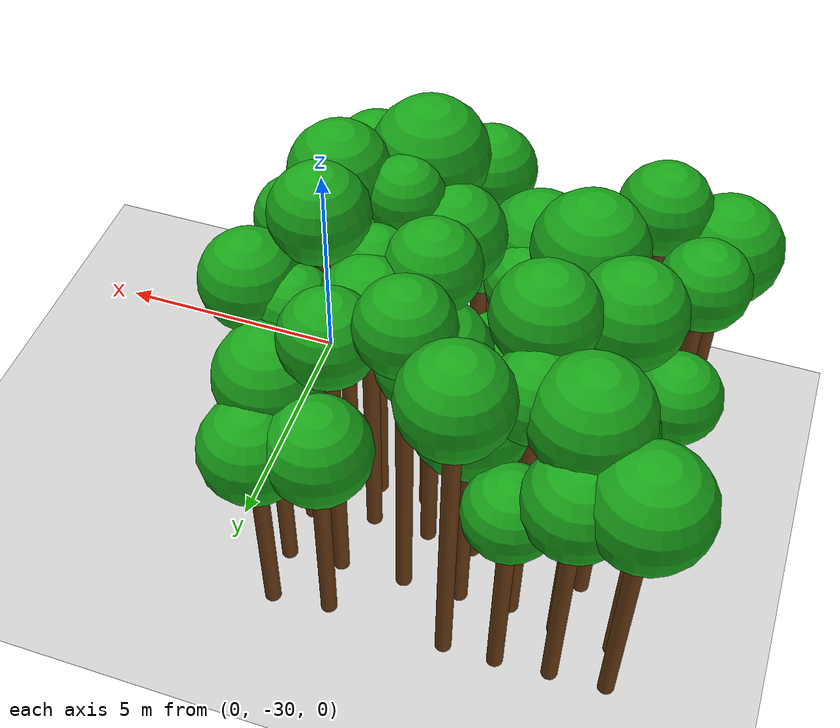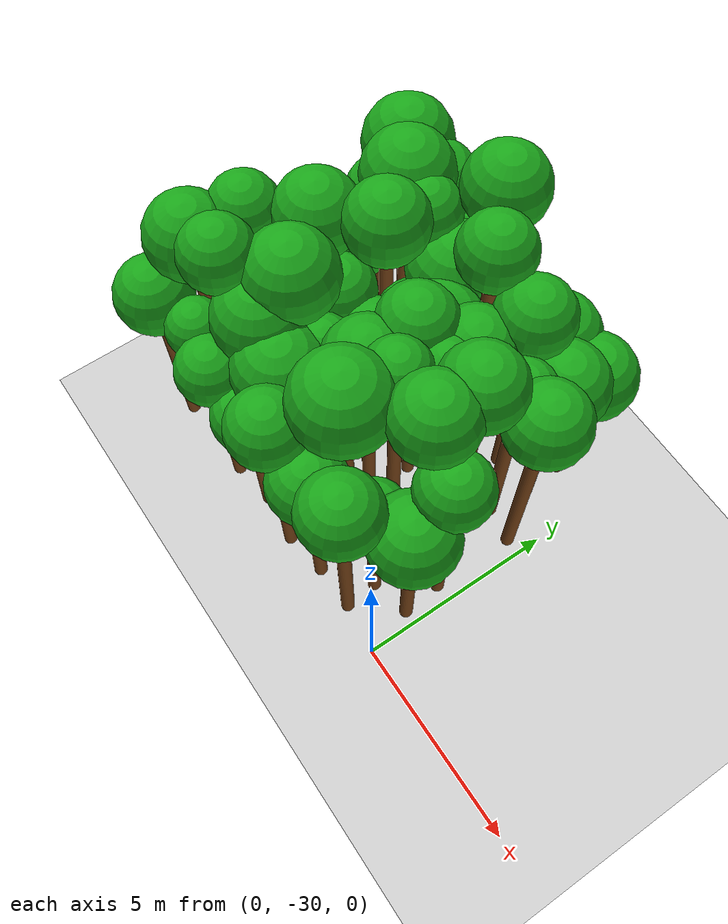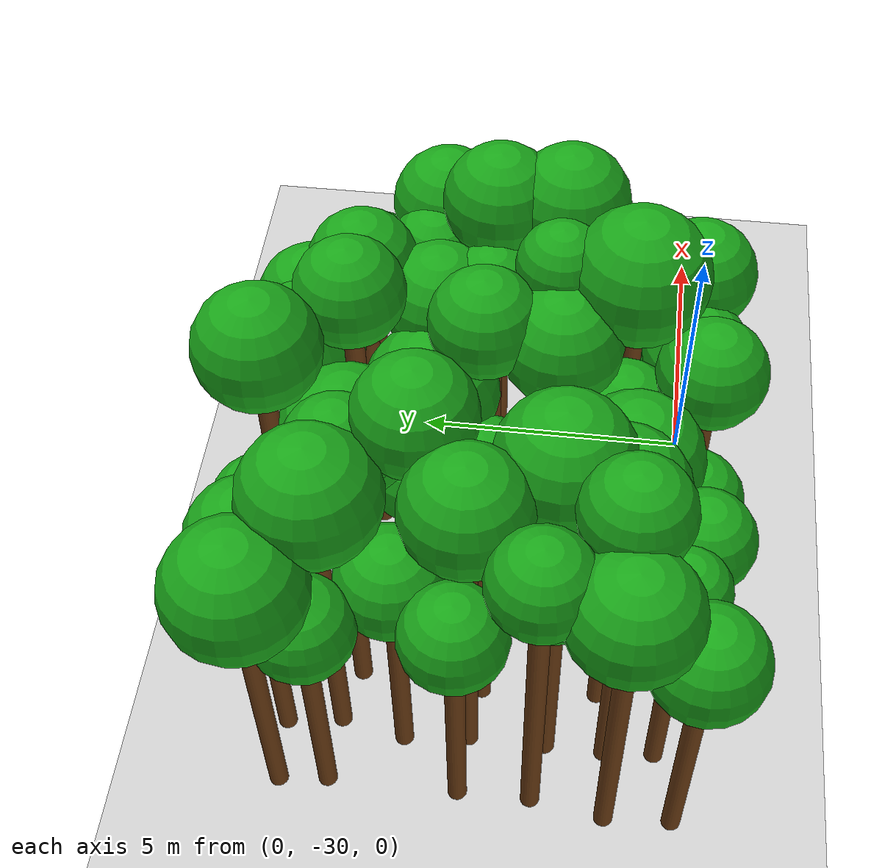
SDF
<sdf version="1.6">
 <world name="forest_world">
  <include><uri>model://sun</uri></include>
  <include><uri>model://ground_plane</uri></include>
  <model name="tree_1100_trunk">
   <static>true</static>
   <pose>-8.08 -30.18 2.35 0 0 0</pose>
   <link name="link">
    <collision name="collision">
     <geometry><cylinder><radius>0.16</radius><length>4.71</length></cylinder></geometry>
    </collision>
    <visual name="visual">
     <geometry><cylinder><radius>0.16</radius><length>4.71</length></cylinder></geometry>
     <material><ambient>0.35 0.20 0.05 1</ambient><diffuse>0.45 0.25 0.08 1</diffuse></material>
    </visual>
   </link>
  </model>
  <model name="tree_1100_leaf">
   <static>true</static>
   <pose>-8.08 -30.18 5.25 0 0 0</pose>
   <link name="link">
    <collision name="collision"><geometry><sphere><radius>0.91</radius></sphere></geometry></collision>
    <visual name="visual">
     <geometry><sphere><radius>0.91</radius></sphere></geometry>
     <material><ambient>0.05 0.45 0.05 1</ambient><diffuse>0.10 0.65 0.10 1</diffuse></material>
    </visual>
   </link>
  </model>
  <model name="tree_1101_trunk">
   <static>true</static>
   <pose>-8.14 -29.05 2.91 0 0 0</pose>
   <link name="link">
    <collision name="collision">
     <geometry><cylinder><radius>0.16</radius><length>5.81</length></cylinder></geometry>
    </collision>
    <visual name="visual">
     <geometry><cylinder><radius>0.16</radius><length>5.81</length></cylinder></geometry>
     <material><ambient>0.35 0.20 0.05 1</ambient><diffuse>0.45 0.25 0.08 1</diffuse></material>
    </visual>
   </link>
  </model>
  <model name="tree_1101_leaf">
   <static>true</static>
   <pose>-8.14 -29.05 6.41 0 0 0</pose>
   <link name="link">
    <collision name="collision"><geometry><sphere><radius>1.01</radius></sphere></geometry></collision>
    <visual name="visual">
     <geometry><sphere><radius>1.01</radius></sphere></geometry>
     <material><ambient>0.05 0.45 0.05 1</ambient><diffuse>0.10 0.65 0.10 1</diffuse></material>
    </visual>
   </link>
  </model>
  <model name="tree_1102_trunk">
   <static>true</static>
   <pose>-7.93 -27.80 3.08 0 0 0</pose>
   <link name="link">
    <collision name="collision">
     <geometry><cylinder><radius>0.16</radius><length>6.16</length></cylinder></geometry>
    </collision>
    <visual name="visual">
     <geometry><cylinder><radius>0.16</radius><length>6.16</length></cylinder></geometry>
     <material><ambient>0.35 0.20 0.05 1</ambient><diffuse>0.45 0.25 0.08 1</diffuse></material>
    </visual>
   </link>
  </model>
  <model name="tree_1102_leaf">
   <static>true</static>
   <pose>-7.93 -27.80 6.65 0 0 0</pose>
   <link name="link">
    <collision name="collision"><geometry><sphere><radius>0.82</radius></sphere></geometry></collision>
    <visual name="visual">
     <geometry><sphere><radius>0.82</radius></sphere></geometry>
     <material><ambient>0.05 0.45 0.05 1</ambient><diffuse>0.10 0.65 0.10 1</diffuse></material>
    </visual>
   </link>
  </model>
  <model name="tree_1103_trunk">
   <static>true</static>
   <pose>-7.93 -26.57 2.27 0 0 0</pose>
   <link name="link">
    <collision name="collision">
     <geometry><cylinder><radius>0.16</radius><length>4.54</length></cylinder></geometry>
    </collision>
    <visual name="visual">
     <geometry><cylinder><radius>0.16</radius><length>4.54</length></cylinder></geometry>
     <material><ambient>0.35 0.20 0.05 1</ambient><diffuse>0.45 0.25 0.08 1</diffuse></material>
    </visual>
   </link>
  </model>
  <model name="tree_1103_leaf">
   <static>true</static>
   <pose>-7.93 -26.57 5.04 0 0 0</pose>
   <link name="link">
    <collision name="collision"><geometry><sphere><radius>0.84</radius></sphere></geometry></collision>
    <visual name="visual">
     <geometry><sphere><radius>0.84</radius></sphere></geometry>
     <material><ambient>0.05 0.45 0.05 1</ambient><diffuse>0.10 0.65 0.10 1</diffuse></material>
    </visual>
   </link>
  </model>
  <model name="tree_1105_trunk">
   <static>true</static>
   <pose>-7.92 -24.35 2.19 0 0 0</pose>
   <link name="link">
    <collision name="collision">
     <geometry><cylinder><radius>0.16</radius><length>4.38</length></cylinder></geometry>
    </collision>
    <visual name="visual">
     <geometry><cylinder><radius>0.16</radius><length>4.38</length></cylinder></geometry>
     <material><ambient>0.35 0.20 0.05 1</ambient><diffuse>0.45 0.25 0.08 1</diffuse></material>
    </visual>
   </link>
  </model>
  <model name="tree_1105_leaf">
   <static>true</static>
   <pose>-7.92 -24.35 4.88 0 0 0</pose>
   <link name="link">
    <collision name="collision"><geometry><sphere><radius>0.83</radius></sphere></geometry></collision>
    <visual name="visual">
     <geometry><sphere><radius>0.83</radius></sphere></geometry>
     <material><ambient>0.05 0.45 0.05 1</ambient><diffuse>0.10 0.65 0.10 1</diffuse></material>
    </visual>
   </link>
  </model>
  <model name="tree_1106_trunk">
   <static>true</static>
   <pose>-8.01 -23.52 2.62 0 0 0</pose>
   <link name="link">
    <collision name="collision">
     <geometry><cylinder><radius>0.16</radius><length>5.23</length></cylinder></geometry>
    </collision>
    <visual name="visual">
     <geometry><cylinder><radius>0.16</radius><length>5.23</length></cylinder></geometry>
     <material><ambient>0.35 0.20 0.05 1</ambient><diffuse>0.45 0.25 0.08 1</diffuse></material>
    </visual>
   </link>
  </model>
  <model name="tree_1106_leaf">
   <static>true</static>
   <pose>-8.01 -23.52 5.89 0 0 0</pose>
   <link name="link">
    <collision name="collision"><geometry><sphere><radius>1.09</radius></sphere></geometry></collision>
    <visual name="visual">
     <geometry><sphere><radius>1.09</radius></sphere></geometry>
     <material><ambient>0.05 0.45 0.05 1</ambient><diffuse>0.10 0.65 0.10 1</diffuse></material>
    </visual>
   </link>
  </model>
  <model name="tree_1155_trunk">
   <static>true</static>
   <pose>-6.88 -29.84 2.38 0 0 0</pose>
   <link name="link">
    <collision name="collision">
     <geometry><cylinder><radius>0.16</radius><length>4.76</length></cylinder></geometry>
    </collision>
    <visual name="visual">
     <geometry><cylinder><radius>0.16</radius><length>4.76</length></cylinder></geometry>
     <material><ambient>0.35 0.20 0.05 1</ambient><diffuse>0.45 0.25 0.08 1</diffuse></material>
    </visual>
   </link>
  </model>
  <model name="tree_1155_leaf">
   <static>true</static>
   <pose>-6.88 -29.84 5.18 0 0 0</pose>
   <link name="link">
    <collision name="collision"><geometry><sphere><radius>0.70</radius></sphere></geometry></collision>
    <visual name="visual">
     <geometry><sphere><radius>0.70</radius></sphere></geometry>
     <material><ambient>0.05 0.45 0.05 1</ambient><diffuse>0.10 0.65 0.10 1</diffuse></material>
    </visual>
   </link>
  </model>
  <model name="tree_1156_trunk">
   <static>true</static>
   <pose>-6.94 -28.98 3.29 0 0 0</pose>
   <link name="link">
    <collision name="collision">
     <geometry><cylinder><radius>0.16</radius><length>6.58</length></cylinder></geometry>
    </collision>
    <visual name="visual">
     <geometry><cylinder><radius>0.16</radius><length>6.58</length></cylinder></geometry>
     <material><ambient>0.35 0.20 0.05 1</ambient><diffuse>0.45 0.25 0.08 1</diffuse></material>
    </visual>
   </link>
  </model>
  <model name="tree_1156_leaf">
   <static>true</static>
   <pose>-6.94 -28.98 7.09 0 0 0</pose>
   <link name="link">
    <collision name="collision"><geometry><sphere><radius>0.85</radius></sphere></geometry></collision>
    <visual name="visual">
     <geometry><sphere><radius>0.85</radius></sphere></geometry>
     <material><ambient>0.05 0.45 0.05 1</ambient><diffuse>0.10 0.65 0.10 1</diffuse></material>
    </visual>
   </link>
  </model>
  <model name="tree_1157_trunk">
   <static>true</static>
   <pose>-6.91 -27.97 2.22 0 0 0</pose>
   <link name="link">
    <collision name="collision">
     <geometry><cylinder><radius>0.16</radius><length>4.44</length></cylinder></geometry>
    </collision>
    <visual name="visual">
     <geometry><cylinder><radius>0.16</radius><length>4.44</length></cylinder></geometry>
     <material><ambient>0.35 0.20 0.05 1</ambient><diffuse>0.45 0.25 0.08 1</diffuse></material>
    </visual>
   </link>
  </model>
  <model name="tree_1157_leaf">
   <static>true</static>
   <pose>-6.91 -27.97 4.91 0 0 0</pose>
   <link name="link">
    <collision name="collision"><geometry><sphere><radius>0.79</radius></sphere></geometry></collision>
    <visual name="visual">
     <geometry><sphere><radius>0.79</radius></sphere></geometry>
     <material><ambient>0.05 0.45 0.05 1</ambient><diffuse>0.10 0.65 0.10 1</diffuse></material>
    </visual>
   </link>
  </model>
  <model name="tree_1158_trunk">
   <static>true</static>
   <pose>-6.90 -26.65 3.07 0 0 0</pose>
   <link name="link">
    <collision name="collision">
     <geometry><cylinder><radius>0.16</radius><length>6.14</length></cylinder></geometry>
    </collision>
    <visual name="visual">
     <geometry><cylinder><radius>0.16</radius><length>6.14</length></cylinder></geometry>
     <material><ambient>0.35 0.20 0.05 1</ambient><diffuse>0.45 0.25 0.08 1</diffuse></material>
    </visual>
   </link>
  </model>
  <model name="tree_1158_leaf">
   <static>true</static>
   <pose>-6.90 -26.65 6.73 0 0 0</pose>
   <link name="link">
    <collision name="collision"><geometry><sphere><radius>0.99</radius></sphere></geometry></collision>
    <visual name="visual">
     <geometry><sphere><radius>0.99</radius></sphere></geometry>
     <material><ambient>0.05 0.45 0.05 1</ambient><diffuse>0.10 0.65 0.10 1</diffuse></material>
    </visual>
   </link>
  </model>
  <model name="tree_1159_trunk">
   <static>true</static>
   <pose>-7.02 -25.54 2.20 0 0 0</pose>
   <link name="link">
    <collision name="collision">
     <geometry><cylinder><radius>0.16</radius><length>4.39</length></cylinder></geometry>
    </collision>
    <visual name="visual">
     <geometry><cylinder><radius>0.16</radius><length>4.39</length></cylinder></geometry>
     <material><ambient>0.35 0.20 0.05 1</ambient><diffuse>0.45 0.25 0.08 1</diffuse></material>
    </visual>
   </link>
  </model>
  <model name="tree_1159_leaf">
   <static>true</static>
   <pose>-7.02 -25.54 4.93 0 0 0</pose>
   <link name="link">
    <collision name="collision"><geometry><sphere><radius>0.89</radius></sphere></geometry></collision>
    <visual name="visual">
     <geometry><sphere><radius>0.89</radius></sphere></geometry>
     <material><ambient>0.05 0.45 0.05 1</ambient><diffuse>0.10 0.65 0.10 1</diffuse></material>
    </visual>
   </link>
  </model>
  <model name="tree_1160_trunk">
   <static>true</static>
   <pose>-6.78 -24.42 2.96 0 0 0</pose>
   <link name="link">
    <collision name="collision">
     <geometry><cylinder><radius>0.16</radius><length>5.92</length></cylinder></geometry>
    </collision>
    <visual name="visual">
     <geometry><cylinder><radius>0.16</radius><length>5.92</length></cylinder></geometry>
     <material><ambient>0.35 0.20 0.05 1</ambient><diffuse>0.45 0.25 0.08 1</diffuse></material>
    </visual>
   </link>
  </model>
  <model name="tree_1160_leaf">
   <static>true</static>
   <pose>-6.78 -24.42 6.57 0 0 0</pose>
   <link name="link">
    <collision name="collision"><geometry><sphere><radius>1.08</radius></sphere></geometry></collision>
    <visual name="visual">
     <geometry><sphere><radius>1.08</radius></sphere></geometry>
     <material><ambient>0.05 0.45 0.05 1</ambient><diffuse>0.10 0.65 0.10 1</diffuse></material>
    </visual>
   </link>
  </model>
  <model name="tree_1161_trunk">
   <static>true</static>
   <pose>-6.92 -23.47 2.48 0 0 0</pose>
   <link name="link">
    <collision name="collision">
     <geometry><cylinder><radius>0.16</radius><length>4.96</length></cylinder></geometry>
    </collision>
    <visual name="visual">
     <geometry><cylinder><radius>0.16</radius><length>4.96</length></cylinder></geometry>
     <material><ambient>0.35 0.20 0.05 1</ambient><diffuse>0.45 0.25 0.08 1</diffuse></material>
    </visual>
   </link>
  </model>
  <model name="tree_1161_leaf">
   <static>true</static>
   <pose>-6.92 -23.47 5.55 0 0 0</pose>
   <link name="link">
    <collision name="collision"><geometry><sphere><radius>0.98</radius></sphere></geometry></collision>
    <visual name="visual">
     <geometry><sphere><radius>0.98</radius></sphere></geometry>
     <material><ambient>0.05 0.45 0.05 1</ambient><diffuse>0.10 0.65 0.10 1</diffuse></material>
    </visual>
   </link>
  </model>
  <model name="tree_1210_trunk">
   <static>true</static>
   <pose>-5.87 -30.09 2.29 0 0 0</pose>
   <link name="link">
    <collision name="collision">
     <geometry><cylinder><radius>0.16</radius><length>4.58</length></cylinder></geometry>
    </collision>
    <visual name="visual">
     <geometry><cylinder><radius>0.16</radius><length>4.58</length></cylinder></geometry>
     <material><ambient>0.35 0.20 0.05 1</ambient><diffuse>0.45 0.25 0.08 1</diffuse></material>
    </visual>
   </link>
  </model>
  <model name="tree_1210_leaf">
   <static>true</static>
   <pose>-5.87 -30.09 5.07 0 0 0</pose>
   <link name="link">
    <collision name="collision"><geometry><sphere><radius>0.81</radius></sphere></geometry></collision>
    <visual name="visual">
     <geometry><sphere><radius>0.81</radius></sphere></geometry>
     <material><ambient>0.05 0.45 0.05 1</ambient><diffuse>0.10 0.65 0.10 1</diffuse></material>
    </visual>
   </link>
  </model>
  <model name="tree_1211_trunk">
   <static>true</static>
   <pose>-5.83 -28.79 2.69 0 0 0</pose>
   <link name="link">
    <collision name="collision">
     <geometry><cylinder><radius>0.16</radius><length>5.38</length></cylinder></geometry>
    </collision>
    <visual name="visual">
     <geometry><cylinder><radius>0.16</radius><length>5.38</length></cylinder></geometry>
     <material><ambient>0.35 0.20 0.05 1</ambient><diffuse>0.45 0.25 0.08 1</diffuse></material>
    </visual>
   </link>
  </model>
  <model name="tree_1211_leaf">
   <static>true</static>
   <pose>-5.83 -28.79 6.01 0 0 0</pose>
   <link name="link">
    <collision name="collision"><geometry><sphere><radius>1.06</radius></sphere></geometry></collision>
    <visual name="visual">
     <geometry><sphere><radius>1.06</radius></sphere></geometry>
     <material><ambient>0.05 0.45 0.05 1</ambient><diffuse>0.10 0.65 0.10 1</diffuse></material>
    </visual>
   </link>
  </model>
  <model name="tree_1212_trunk">
   <static>true</static>
   <pose>-5.90 -27.94 3.05 0 0 0</pose>
   <link name="link">
    <collision name="collision">
     <geometry><cylinder><radius>0.16</radius><length>6.11</length></cylinder></geometry>
    </collision>
    <visual name="visual">
     <geometry><cylinder><radius>0.16</radius><length>6.11</length></cylinder></geometry>
     <material><ambient>0.35 0.20 0.05 1</ambient><diffuse>0.45 0.25 0.08 1</diffuse></material>
    </visual>
   </link>
  </model>
  <model name="tree_1212_leaf">
   <static>true</static>
   <pose>-5.90 -27.94 6.75 0 0 0</pose>
   <link name="link">
    <collision name="collision"><geometry><sphere><radius>1.07</radius></sphere></geometry></collision>
    <visual name="visual">
     <geometry><sphere><radius>1.07</radius></sphere></geometry>
     <material><ambient>0.05 0.45 0.05 1</ambient><diffuse>0.10 0.65 0.10 1</diffuse></material>
    </visual>
   </link>
  </model>
  <model name="tree_1213_trunk">
   <static>true</static>
   <pose>-5.95 -26.77 2.33 0 0 0</pose>
   <link name="link">
    <collision name="collision">
     <geometry><cylinder><radius>0.16</radius><length>4.66</length></cylinder></geometry>
    </collision>
    <visual name="visual">
     <geometry><cylinder><radius>0.16</radius><length>4.66</length></cylinder></geometry>
     <material><ambient>0.35 0.20 0.05 1</ambient><diffuse>0.45 0.25 0.08 1</diffuse></material>
    </visual>
   </link>
  </model>
  <model name="tree_1213_leaf">
   <static>true</static>
   <pose>-5.95 -26.77 5.17 0 0 0</pose>
   <link name="link">
    <collision name="collision"><geometry><sphere><radius>0.85</radius></sphere></geometry></collision>
    <visual name="visual">
     <geometry><sphere><radius>0.85</radius></sphere></geometry>
     <material><ambient>0.05 0.45 0.05 1</ambient><diffuse>0.10 0.65 0.10 1</diffuse></material>
    </visual>
   </link>
  </model>
  <model name="tree_1214_trunk">
   <static>true</static>
   <pose>-5.63 -25.77 3.29 0 0 0</pose>
   <link name="link">
    <collision name="collision">
     <geometry><cylinder><radius>0.16</radius><length>6.59</length></cylinder></geometry>
    </collision>
    <visual name="visual">
     <geometry><cylinder><radius>0.16</radius><length>6.59</length></cylinder></geometry>
     <material><ambient>0.35 0.20 0.05 1</ambient><diffuse>0.45 0.25 0.08 1</diffuse></material>
    </visual>
   </link>
  </model>
  <model name="tree_1214_leaf">
   <static>true</static>
   <pose>-5.63 -25.77 7.15 0 0 0</pose>
   <link name="link">
    <collision name="collision"><geometry><sphere><radius>0.95</radius></sphere></geometry></collision>
    <visual name="visual">
     <geometry><sphere><radius>0.95</radius></sphere></geometry>
     <material><ambient>0.05 0.45 0.05 1</ambient><diffuse>0.10 0.65 0.10 1</diffuse></material>
    </visual>
   </link>
  </model>
  <model name="tree_1215_trunk">
   <static>true</static>
   <pose>-5.82 -24.63 3.00 0 0 0</pose>
   <link name="link">
    <collision name="collision">
     <geometry><cylinder><radius>0.16</radius><length>5.99</length></cylinder></geometry>
    </collision>
    <visual name="visual">
     <geometry><cylinder><radius>0.16</radius><length>5.99</length></cylinder></geometry>
     <material><ambient>0.35 0.20 0.05 1</ambient><diffuse>0.45 0.25 0.08 1</diffuse></material>
    </visual>
   </link>
  </model>
  <model name="tree_1215_leaf">
   <static>true</static>
   <pose>-5.82 -24.63 6.49 0 0 0</pose>
   <link name="link">
    <collision name="collision"><geometry><sphere><radius>0.83</radius></sphere></geometry></collision>
    <visual name="visual">
     <geometry><sphere><radius>0.83</radius></sphere></geometry>
     <material><ambient>0.05 0.45 0.05 1</ambient><diffuse>0.10 0.65 0.10 1</diffuse></material>
    </visual>
   </link>
  </model>
  <model name="tree_1216_trunk">
   <static>true</static>
   <pose>-5.86 -23.40 2.19 0 0 0</pose>
   <link name="link">
    <collision name="collision">
     <geometry><cylinder><radius>0.16</radius><length>4.39</length></cylinder></geometry>
    </collision>
    <visual name="visual">
     <geometry><cylinder><radius>0.16</radius><length>4.39</length></cylinder></geometry>
     <material><ambient>0.35 0.20 0.05 1</ambient><diffuse>0.45 0.25 0.08 1</diffuse></material>
    </visual>
   </link>
  </model>
  <model name="tree_1216_leaf">
   <static>true</static>
   <pose>-5.86 -23.40 4.90 0 0 0</pose>
   <link name="link">
    <collision name="collision"><geometry><sphere><radius>0.85</radius></sphere></geometry></collision>
    <visual name="visual">
     <geometry><sphere><radius>0.85</radius></sphere></geometry>
     <material><ambient>0.05 0.45 0.05 1</ambient><diffuse>0.10 0.65 0.10 1</diffuse></material>
    </visual>
   </link>
  </model>
  <model name="tree_1265_trunk">
   <static>true</static>
   <pose>-4.75 -29.92 2.02 0 0 0</pose>
   <link name="link">
    <collision name="collision">
     <geometry><cylinder><radius>0.16</radius><length>4.04</length></cylinder></geometry>
    </collision>
    <visual name="visual">
     <geometry><cylinder><radius>0.16</radius><length>4.04</length></cylinder></geometry>
     <material><ambient>0.35 0.20 0.05 1</ambient><diffuse>0.45 0.25 0.08 1</diffuse></material>
    </visual>
   </link>
  </model>
  <model name="tree_1265_leaf">
   <static>true</static>
   <pose>-4.75 -29.92 4.54 0 0 0</pose>
   <link name="link">
    <collision name="collision"><geometry><sphere><radius>0.84</radius></sphere></geometry></collision>
    <visual name="visual">
     <geometry><sphere><radius>0.84</radius></sphere></geometry>
     <material><ambient>0.05 0.45 0.05 1</ambient><diffuse>0.10 0.65 0.10 1</diffuse></material>
    </visual>
   </link>
  </model>
  <model name="tree_1266_trunk">
   <static>true</static>
   <pose>-4.80 -28.99 2.45 0 0 0</pose>
   <link name="link">
    <collision name="collision">
     <geometry><cylinder><radius>0.16</radius><length>4.90</length></cylinder></geometry>
    </collision>
    <visual name="visual">
     <geometry><cylinder><radius>0.16</radius><length>4.90</length></cylinder></geometry>
     <material><ambient>0.35 0.20 0.05 1</ambient><diffuse>0.45 0.25 0.08 1</diffuse></material>
    </visual>
   </link>
  </model>
  <model name="tree_1266_leaf">
   <static>true</static>
   <pose>-4.80 -28.99 5.54 0 0 0</pose>
   <link name="link">
    <collision name="collision"><geometry><sphere><radius>1.07</radius></sphere></geometry></collision>
    <visual name="visual">
     <geometry><sphere><radius>1.07</radius></sphere></geometry>
     <material><ambient>0.05 0.45 0.05 1</ambient><diffuse>0.10 0.65 0.10 1</diffuse></material>
    </visual>
   </link>
  </model>
  <model name="tree_1267_trunk">
   <static>true</static>
   <pose>-4.78 -27.94 2.54 0 0 0</pose>
   <link name="link">
    <collision name="collision">
     <geometry><cylinder><radius>0.16</radius><length>5.08</length></cylinder></geometry>
    </collision>
    <visual name="visual">
     <geometry><cylinder><radius>0.16</radius><length>5.08</length></cylinder></geometry>
     <material><ambient>0.35 0.20 0.05 1</ambient><diffuse>0.45 0.25 0.08 1</diffuse></material>
    </visual>
   </link>
  </model>
  <model name="tree_1267_leaf">
   <static>true</static>
   <pose>-4.78 -27.94 5.51 0 0 0</pose>
   <link name="link">
    <collision name="collision"><geometry><sphere><radius>0.73</radius></sphere></geometry></collision>
    <visual name="visual">
     <geometry><sphere><radius>0.73</radius></sphere></geometry>
     <material><ambient>0.05 0.45 0.05 1</ambient><diffuse>0.10 0.65 0.10 1</diffuse></material>
    </visual>
   </link>
  </model>
  <model name="tree_1268_trunk">
   <static>true</static>
   <pose>-4.71 -26.64 2.10 0 0 0</pose>
   <link name="link">
    <collision name="collision">
     <geometry><cylinder><radius>0.16</radius><length>4.20</length></cylinder></geometry>
    </collision>
    <visual name="visual">
     <geometry><cylinder><radius>0.16</radius><length>4.20</length></cylinder></geometry>
     <material><ambient>0.35 0.20 0.05 1</ambient><diffuse>0.45 0.25 0.08 1</diffuse></material>
    </visual>
   </link>
  </model>
  <model name="tree_1268_leaf">
   <static>true</static>
   <pose>-4.71 -26.64 4.75 0 0 0</pose>
   <link name="link">
    <collision name="collision"><geometry><sphere><radius>0.92</radius></sphere></geometry></collision>
    <visual name="visual">
     <geometry><sphere><radius>0.92</radius></sphere></geometry>
     <material><ambient>0.05 0.45 0.05 1</ambient><diffuse>0.10 0.65 0.10 1</diffuse></material>
    </visual>
   </link>
  </model>
  <model name="tree_1269_trunk">
   <static>true</static>
   <pose>-4.72 -25.64 2.08 0 0 0</pose>
   <link name="link">
    <collision name="collision">
     <geometry><cylinder><radius>0.16</radius><length>4.17</length></cylinder></geometry>
    </collision>
    <visual name="visual">
     <geometry><cylinder><radius>0.16</radius><length>4.17</length></cylinder></geometry>
     <material><ambient>0.35 0.20 0.05 1</ambient><diffuse>0.45 0.25 0.08 1</diffuse></material>
    </visual>
   </link>
  </model>
  <model name="tree_1269_leaf">
   <static>true</static>
   <pose>-4.72 -25.64 4.69 0 0 0</pose>
   <link name="link">
    <collision name="collision"><geometry><sphere><radius>0.88</radius></sphere></geometry></collision>
    <visual name="visual">
     <geometry><sphere><radius>0.88</radius></sphere></geometry>
     <material><ambient>0.05 0.45 0.05 1</ambient><diffuse>0.10 0.65 0.10 1</diffuse></material>
    </visual>
   </link>
  </model>
  <model name="tree_1270_trunk">
   <static>true</static>
   <pose>-4.79 -24.57 2.46 0 0 0</pose>
   <link name="link">
    <collision name="collision">
     <geometry><cylinder><radius>0.16</radius><length>4.93</length></cylinder></geometry>
    </collision>
    <visual name="visual">
     <geometry><cylinder><radius>0.16</radius><length>4.93</length></cylinder></geometry>
     <material><ambient>0.35 0.20 0.05 1</ambient><diffuse>0.45 0.25 0.08 1</diffuse></material>
    </visual>
   </link>
  </model>
  <model name="tree_1270_leaf">
   <static>true</static>
   <pose>-4.79 -24.57 5.58 0 0 0</pose>
   <link name="link">
    <collision name="collision"><geometry><sphere><radius>1.08</radius></sphere></geometry></collision>
    <visual name="visual">
     <geometry><sphere><radius>1.08</radius></sphere></geometry>
     <material><ambient>0.05 0.45 0.05 1</ambient><diffuse>0.10 0.65 0.10 1</diffuse></material>
    </visual>
   </link>
  </model>
  <model name="tree_1271_trunk">
   <static>true</static>
   <pose>-4.83 -23.38 3.41 0 0 0</pose>
   <link name="link">
    <collision name="collision">
     <geometry><cylinder><radius>0.16</radius><length>6.82</length></cylinder></geometry>
    </collision>
    <visual name="visual">
     <geometry><cylinder><radius>0.16</radius><length>6.82</length></cylinder></geometry>
     <material><ambient>0.35 0.20 0.05 1</ambient><diffuse>0.45 0.25 0.08 1</diffuse></material>
    </visual>
   </link>
  </model>
  <model name="tree_1271_leaf">
   <static>true</static>
   <pose>-4.83 -23.38 7.40 0 0 0</pose>
   <link name="link">
    <collision name="collision"><geometry><sphere><radius>0.97</radius></sphere></geometry></collision>
    <visual name="visual">
     <geometry><sphere><radius>0.97</radius></sphere></geometry>
     <material><ambient>0.05 0.45 0.05 1</ambient><diffuse>0.10 0.65 0.10 1</diffuse></material>
    </visual>
   </link>
  </model>
  <model name="tree_1320_trunk">
   <static>true</static>
   <pose>-3.52 -30.04 2.82 0 0 0</pose>
   <link name="link">
    <collision name="collision">
     <geometry><cylinder><radius>0.16</radius><length>5.64</length></cylinder></geometry>
    </collision>
    <visual name="visual">
     <geometry><cylinder><radius>0.16</radius><length>5.64</length></cylinder></geometry>
     <material><ambient>0.35 0.20 0.05 1</ambient><diffuse>0.45 0.25 0.08 1</diffuse></material>
    </visual>
   </link>
  </model>
  <model name="tree_1320_leaf">
   <static>true</static>
   <pose>-3.52 -30.04 6.17 0 0 0</pose>
   <link name="link">
    <collision name="collision"><geometry><sphere><radius>0.88</radius></sphere></geometry></collision>
    <visual name="visual">
     <geometry><sphere><radius>0.88</radius></sphere></geometry>
     <material><ambient>0.05 0.45 0.05 1</ambient><diffuse>0.10 0.65 0.10 1</diffuse></material>
    </visual>
   </link>
  </model>
  <model name="tree_1321_trunk">
   <static>true</static>
   <pose>-3.75 -28.75 2.42 0 0 0</pose>
   <link name="link">
    <collision name="collision">
     <geometry><cylinder><radius>0.16</radius><length>4.83</length></cylinder></geometry>
    </collision>
    <visual name="visual">
     <geometry><cylinder><radius>0.16</radius><length>4.83</length></cylinder></geometry>
     <material><ambient>0.35 0.20 0.05 1</ambient><diffuse>0.45 0.25 0.08 1</diffuse></material>
    </visual>
   </link>
  </model>
  <model name="tree_1321_leaf">
   <static>true</static>
   <pose>-3.75 -28.75 5.35 0 0 0</pose>
   <link name="link">
    <collision name="collision"><geometry><sphere><radius>0.86</radius></sphere></geometry></collision>
    <visual name="visual">
     <geometry><sphere><radius>0.86</radius></sphere></geometry>
     <material><ambient>0.05 0.45 0.05 1</ambient><diffuse>0.10 0.65 0.10 1</diffuse></material>
    </visual>
   </link>
  </model>
  <model name="tree_1322_trunk">
   <static>true</static>
   <pose>-3.48 -27.71 2.98 0 0 0</pose>
   <link name="link">
    <collision name="collision">
     <geometry><cylinder><radius>0.16</radius><length>5.95</length></cylinder></geometry>
    </collision>
    <visual name="visual">
     <geometry><cylinder><radius>0.16</radius><length>5.95</length></cylinder></geometry>
     <material><ambient>0.35 0.20 0.05 1</ambient><diffuse>0.45 0.25 0.08 1</diffuse></material>
    </visual>
   </link>
  </model>
  <model name="tree_1322_leaf">
   <static>true</static>
   <pose>-3.48 -27.71 6.53 0 0 0</pose>
   <link name="link">
    <collision name="collision"><geometry><sphere><radius>0.97</radius></sphere></geometry></collision>
    <visual name="visual">
     <geometry><sphere><radius>0.97</radius></sphere></geometry>
     <material><ambient>0.05 0.45 0.05 1</ambient><diffuse>0.10 0.65 0.10 1</diffuse></material>
    </visual>
   </link>
  </model>
  <model name="tree_1323_trunk">
   <static>true</static>
   <pose>-3.47 -26.53 3.16 0 0 0</pose>
   <link name="link">
    <collision name="collision">
     <geometry><cylinder><radius>0.16</radius><length>6.32</length></cylinder></geometry>
    </collision>
    <visual name="visual">
     <geometry><cylinder><radius>0.16</radius><length>6.32</length></cylinder></geometry>
     <material><ambient>0.35 0.20 0.05 1</ambient><diffuse>0.45 0.25 0.08 1</diffuse></material>
    </visual>
   </link>
  </model>
  <model name="tree_1323_leaf">
   <static>true</static>
   <pose>-3.47 -26.53 6.85 0 0 0</pose>
   <link name="link">
    <collision name="collision"><geometry><sphere><radius>0.88</radius></sphere></geometry></collision>
    <visual name="visual">
     <geometry><sphere><radius>0.88</radius></sphere></geometry>
     <material><ambient>0.05 0.45 0.05 1</ambient><diffuse>0.10 0.65 0.10 1</diffuse></material>
    </visual>
   </link>
  </model>
  <model name="tree_1324_trunk">
   <static>true</static>
   <pose>-3.76 -25.73 2.43 0 0 0</pose>
   <link name="link">
    <collision name="collision">
     <geometry><cylinder><radius>0.16</radius><length>4.85</length></cylinder></geometry>
    </collision>
    <visual name="visual">
     <geometry><cylinder><radius>0.16</radius><length>4.85</length></cylinder></geometry>
     <material><ambient>0.35 0.20 0.05 1</ambient><diffuse>0.45 0.25 0.08 1</diffuse></material>
    </visual>
   </link>
  </model>
  <model name="tree_1324_leaf">
   <static>true</static>
   <pose>-3.76 -25.73 5.50 0 0 0</pose>
   <link name="link">
    <collision name="collision"><geometry><sphere><radius>1.09</radius></sphere></geometry></collision>
    <visual name="visual">
     <geometry><sphere><radius>1.09</radius></sphere></geometry>
     <material><ambient>0.05 0.45 0.05 1</ambient><diffuse>0.10 0.65 0.10 1</diffuse></material>
    </visual>
   </link>
  </model>
  <model name="tree_1325_trunk">
   <static>true</static>
   <pose>-3.64 -24.53 3.47 0 0 0</pose>
   <link name="link">
    <collision name="collision">
     <geometry><cylinder><radius>0.16</radius><length>6.93</length></cylinder></geometry>
    </collision>
    <visual name="visual">
     <geometry><cylinder><radius>0.16</radius><length>6.93</length></cylinder></geometry>
     <material><ambient>0.35 0.20 0.05 1</ambient><diffuse>0.45 0.25 0.08 1</diffuse></material>
    </visual>
   </link>
  </model>
  <model name="tree_1325_leaf">
   <static>true</static>
   <pose>-3.64 -24.53 7.45 0 0 0</pose>
   <link name="link">
    <collision name="collision"><geometry><sphere><radius>0.86</radius></sphere></geometry></collision>
    <visual name="visual">
     <geometry><sphere><radius>0.86</radius></sphere></geometry>
     <material><ambient>0.05 0.45 0.05 1</ambient><diffuse>0.10 0.65 0.10 1</diffuse></material>
    </visual>
   </link>
  </model>
  <model name="tree_1375_trunk">
   <static>true</static>
   <pose>-2.41 -29.87 2.41 0 0 0</pose>
   <link name="link">
    <collision name="collision">
     <geometry><cylinder><radius>0.16</radius><length>4.82</length></cylinder></geometry>
    </collision>
    <visual name="visual">
     <geometry><cylinder><radius>0.16</radius><length>4.82</length></cylinder></geometry>
     <material><ambient>0.35 0.20 0.05 1</ambient><diffuse>0.45 0.25 0.08 1</diffuse></material>
    </visual>
   </link>
  </model>
  <model name="tree_1375_leaf">
   <static>true</static>
   <pose>-2.41 -29.87 5.35 0 0 0</pose>
   <link name="link">
    <collision name="collision"><geometry><sphere><radius>0.89</radius></sphere></geometry></collision>
    <visual name="visual">
     <geometry><sphere><radius>0.89</radius></sphere></geometry>
     <material><ambient>0.05 0.45 0.05 1</ambient><diffuse>0.10 0.65 0.10 1</diffuse></material>
    </visual>
   </link>
  </model>
  <model name="tree_1376_trunk">
   <static>true</static>
   <pose>-2.67 -28.81 3.31 0 0 0</pose>
   <link name="link">
    <collision name="collision">
     <geometry><cylinder><radius>0.16</radius><length>6.62</length></cylinder></geometry>
    </collision>
    <visual name="visual">
     <geometry><cylinder><radius>0.16</radius><length>6.62</length></cylinder></geometry>
     <material><ambient>0.35 0.20 0.05 1</ambient><diffuse>0.45 0.25 0.08 1</diffuse></material>
    </visual>
   </link>
  </model>
  <model name="tree_1376_leaf">
   <static>true</static>
   <pose>-2.67 -28.81 7.28 0 0 0</pose>
   <link name="link">
    <collision name="collision"><geometry><sphere><radius>1.10</radius></sphere></geometry></collision>
    <visual name="visual">
     <geometry><sphere><radius>1.10</radius></sphere></geometry>
     <material><ambient>0.05 0.45 0.05 1</ambient><diffuse>0.10 0.65 0.10 1</diffuse></material>
    </visual>
   </link>
  </model>
  <model name="tree_1377_trunk">
   <static>true</static>
   <pose>-2.60 -27.62 3.44 0 0 0</pose>
   <link name="link">
    <collision name="collision">
     <geometry><cylinder><radius>0.16</radius><length>6.87</length></cylinder></geometry>
    </collision>
    <visual name="visual">
     <geometry><cylinder><radius>0.16</radius><length>6.87</length></cylinder></geometry>
     <material><ambient>0.35 0.20 0.05 1</ambient><diffuse>0.45 0.25 0.08 1</diffuse></material>
    </visual>
   </link>
  </model>
  <model name="tree_1377_leaf">
   <static>true</static>
   <pose>-2.60 -27.62 7.30 0 0 0</pose>
   <link name="link">
    <collision name="collision"><geometry><sphere><radius>0.72</radius></sphere></geometry></collision>
    <visual name="visual">
     <geometry><sphere><radius>0.72</radius></sphere></geometry>
     <material><ambient>0.05 0.45 0.05 1</ambient><diffuse>0.10 0.65 0.10 1</diffuse></material>
    </visual>
   </link>
  </model>
  <model name="tree_1378_trunk">
   <static>true</static>
   <pose>-2.44 -26.55 3.09 0 0 0</pose>
   <link name="link">
    <collision name="collision">
     <geometry><cylinder><radius>0.16</radius><length>6.17</length></cylinder></geometry>
    </collision>
    <visual name="visual">
     <geometry><cylinder><radius>0.16</radius><length>6.17</length></cylinder></geometry>
     <material><ambient>0.35 0.20 0.05 1</ambient><diffuse>0.45 0.25 0.08 1</diffuse></material>
    </visual>
   </link>
  </model>
  <model name="tree_1378_leaf">
   <static>true</static>
   <pose>-2.44 -26.55 6.60 0 0 0</pose>
   <link name="link">
    <collision name="collision"><geometry><sphere><radius>0.70</radius></sphere></geometry></collision>
    <visual name="visual">
     <geometry><sphere><radius>0.70</radius></sphere></geometry>
     <material><ambient>0.05 0.45 0.05 1</ambient><diffuse>0.10 0.65 0.10 1</diffuse></material>
    </visual>
   </link>
  </model>
  <model name="tree_1379_trunk">
   <static>true</static>
   <pose>-2.59 -25.74 2.89 0 0 0</pose>
   <link name="link">
    <collision name="collision">
     <geometry><cylinder><radius>0.16</radius><length>5.78</length></cylinder></geometry>
    </collision>
    <visual name="visual">
     <geometry><cylinder><radius>0.16</radius><length>5.78</length></cylinder></geometry>
     <material><ambient>0.35 0.20 0.05 1</ambient><diffuse>0.45 0.25 0.08 1</diffuse></material>
    </visual>
   </link>
  </model>
  <model name="tree_1379_leaf">
   <static>true</static>
   <pose>-2.59 -25.74 6.35 0 0 0</pose>
   <link name="link">
    <collision name="collision"><geometry><sphere><radius>0.94</radius></sphere></geometry></collision>
    <visual name="visual">
     <geometry><sphere><radius>0.94</radius></sphere></geometry>
     <material><ambient>0.05 0.45 0.05 1</ambient><diffuse>0.10 0.65 0.10 1</diffuse></material>
    </visual>
   </link>
  </model>
  <model name="tree_1380_trunk">
   <static>true</static>
   <pose>-2.33 -24.49 3.12 0 0 0</pose>
   <link name="link">
    <collision name="collision">
     <geometry><cylinder><radius>0.16</radius><length>6.24</length></cylinder></geometry>
    </collision>
    <visual name="visual">
     <geometry><cylinder><radius>0.16</radius><length>6.24</length></cylinder></geometry>
     <material><ambient>0.35 0.20 0.05 1</ambient><diffuse>0.45 0.25 0.08 1</diffuse></material>
    </visual>
   </link>
  </model>
  <model name="tree_1380_leaf">
   <static>true</static>
   <pose>-2.33 -24.49 6.76 0 0 0</pose>
   <link name="link">
    <collision name="collision"><geometry><sphere><radius>0.88</radius></sphere></geometry></collision>
    <visual name="visual">
     <geometry><sphere><radius>0.88</radius></sphere></geometry>
     <material><ambient>0.05 0.45 0.05 1</ambient><diffuse>0.10 0.65 0.10 1</diffuse></material>
    </visual>
   </link>
  </model>
  <model name="tree_1381_trunk">
   <static>true</static>
   <pose>-2.44 -23.48 2.22 0 0 0</pose>
   <link name="link">
    <collision name="collision">
     <geometry><cylinder><radius>0.16</radius><length>4.43</length></cylinder></geometry>
    </collision>
    <visual name="visual">
     <geometry><cylinder><radius>0.16</radius><length>4.43</length></cylinder></geometry>
     <material><ambient>0.35 0.20 0.05 1</ambient><diffuse>0.45 0.25 0.08 1</diffuse></material>
    </visual>
   </link>
  </model>
  <model name="tree_1381_leaf">
   <static>true</static>
   <pose>-2.44 -23.48 5.02 0 0 0</pose>
   <link name="link">
    <collision name="collision"><geometry><sphere><radius>0.99</radius></sphere></geometry></collision>
    <visual name="visual">
     <geometry><sphere><radius>0.99</radius></sphere></geometry>
     <material><ambient>0.05 0.45 0.05 1</ambient><diffuse>0.10 0.65 0.10 1</diffuse></material>
    </visual>
   </link>
  </model>
  <model name="tree_1427_trunk">
   <static>true</static>
   <pose>-1.28 -29.83 2.75 0 0 0</pose>
   <link name="link">
    <collision name="collision">
     <geometry><cylinder><radius>0.16</radius><length>5.50</length></cylinder></geometry>
    </collision>
    <visual name="visual">
     <geometry><cylinder><radius>0.16</radius><length>5.50</length></cylinder></geometry>
     <material><ambient>0.35 0.20 0.05 1</ambient><diffuse>0.45 0.25 0.08 1</diffuse></material>
    </visual>
   </link>
  </model>
  <model name="tree_1427_leaf">
   <static>true</static>
   <pose>-1.28 -29.83 6.05 0 0 0</pose>
   <link name="link">
    <collision name="collision"><geometry><sphere><radius>0.92</radius></sphere></geometry></collision>
    <visual name="visual">
     <geometry><sphere><radius>0.92</radius></sphere></geometry>
     <material><ambient>0.05 0.45 0.05 1</ambient><diffuse>0.10 0.65 0.10 1</diffuse></material>
    </visual>
   </link>
  </model>
  <model name="tree_1428_trunk">
   <static>true</static>
   <pose>-1.36 -29.00 2.15 0 0 0</pose>
   <link name="link">
    <collision name="collision">
     <geometry><cylinder><radius>0.16</radius><length>4.30</length></cylinder></geometry>
    </collision>
    <visual name="visual">
     <geometry><cylinder><radius>0.16</radius><length>4.30</length></cylinder></geometry>
     <material><ambient>0.35 0.20 0.05 1</ambient><diffuse>0.45 0.25 0.08 1</diffuse></material>
    </visual>
   </link>
  </model>
  <model name="tree_1428_leaf">
   <static>true</static>
   <pose>-1.36 -29.00 4.75 0 0 0</pose>
   <link name="link">
    <collision name="collision"><geometry><sphere><radius>0.74</radius></sphere></geometry></collision>
    <visual name="visual">
     <geometry><sphere><radius>0.74</radius></sphere></geometry>
     <material><ambient>0.05 0.45 0.05 1</ambient><diffuse>0.10 0.65 0.10 1</diffuse></material>
    </visual>
   </link>
  </model>
  <model name="tree_1429_trunk">
   <static>true</static>
   <pose>-1.37 -27.66 3.44 0 0 0</pose>
   <link name="link">
    <collision name="collision">
     <geometry><cylinder><radius>0.16</radius><length>6.88</length></cylinder></geometry>
    </collision>
    <visual name="visual">
     <geometry><cylinder><radius>0.16</radius><length>6.88</length></cylinder></geometry>
     <material><ambient>0.35 0.20 0.05 1</ambient><diffuse>0.45 0.25 0.08 1</diffuse></material>
    </visual>
   </link>
  </model>
  <model name="tree_1429_leaf">
   <static>true</static>
   <pose>-1.37 -27.66 7.45 0 0 0</pose>
   <link name="link">
    <collision name="collision"><geometry><sphere><radius>0.95</radius></sphere></geometry></collision>
    <visual name="visual">
     <geometry><sphere><radius>0.95</radius></sphere></geometry>
     <material><ambient>0.05 0.45 0.05 1</ambient><diffuse>0.10 0.65 0.10 1</diffuse></material>
    </visual>
   </link>
  </model>
  <model name="tree_1430_trunk">
   <static>true</static>
   <pose>-1.40 -26.57 3.44 0 0 0</pose>
   <link name="link">
    <collision name="collision">
     <geometry><cylinder><radius>0.16</radius><length>6.88</length></cylinder></geometry>
    </collision>
    <visual name="visual">
     <geometry><cylinder><radius>0.16</radius><length>6.88</length></cylinder></geometry>
     <material><ambient>0.35 0.20 0.05 1</ambient><diffuse>0.45 0.25 0.08 1</diffuse></material>
    </visual>
   </link>
  </model>
  <model name="tree_1430_leaf">
   <static>true</static>
   <pose>-1.40 -26.57 7.43 0 0 0</pose>
   <link name="link">
    <collision name="collision"><geometry><sphere><radius>0.92</radius></sphere></geometry></collision>
    <visual name="visual">
     <geometry><sphere><radius>0.92</radius></sphere></geometry>
     <material><ambient>0.05 0.45 0.05 1</ambient><diffuse>0.10 0.65 0.10 1</diffuse></material>
    </visual>
   </link>
  </model>
  <model name="tree_1431_trunk">
   <static>true</static>
   <pose>-1.33 -25.49 2.85 0 0 0</pose>
   <link name="link">
    <collision name="collision">
     <geometry><cylinder><radius>0.16</radius><length>5.70</length></cylinder></geometry>
    </collision>
    <visual name="visual">
     <geometry><cylinder><radius>0.16</radius><length>5.70</length></cylinder></geometry>
     <material><ambient>0.35 0.20 0.05 1</ambient><diffuse>0.45 0.25 0.08 1</diffuse></material>
    </visual>
   </link>
  </model>
  <model name="tree_1431_leaf">
   <static>true</static>
   <pose>-1.33 -25.49 6.16 0 0 0</pose>
   <link name="link">
    <collision name="collision"><geometry><sphere><radius>0.77</radius></sphere></geometry></collision>
    <visual name="visual">
     <geometry><sphere><radius>0.77</radius></sphere></geometry>
     <material><ambient>0.05 0.45 0.05 1</ambient><diffuse>0.10 0.65 0.10 1</diffuse></material>
    </visual>
   </link>
  </model>
  <model name="tree_1432_trunk">
   <static>true</static>
   <pose>-1.24 -24.40 2.43 0 0 0</pose>
   <link name="link">
    <collision name="collision">
     <geometry><cylinder><radius>0.16</radius><length>4.86</length></cylinder></geometry>
    </collision>
    <visual name="visual">
     <geometry><cylinder><radius>0.16</radius><length>4.86</length></cylinder></geometry>
     <material><ambient>0.35 0.20 0.05 1</ambient><diffuse>0.45 0.25 0.08 1</diffuse></material>
    </visual>
   </link>
  </model>
  <model name="tree_1432_leaf">
   <static>true</static>
   <pose>-1.24 -24.40 5.48 0 0 0</pose>
   <link name="link">
    <collision name="collision"><geometry><sphere><radius>1.03</radius></sphere></geometry></collision>
    <visual name="visual">
     <geometry><sphere><radius>1.03</radius></sphere></geometry>
     <material><ambient>0.05 0.45 0.05 1</ambient><diffuse>0.10 0.65 0.10 1</diffuse></material>
    </visual>
   </link>
  </model>
  <model name="tree_1433_trunk">
   <static>true</static>
   <pose>-1.30 -23.36 2.07 0 0 0</pose>
   <link name="link">
    <collision name="collision">
     <geometry><cylinder><radius>0.16</radius><length>4.14</length></cylinder></geometry>
    </collision>
    <visual name="visual">
     <geometry><cylinder><radius>0.16</radius><length>4.14</length></cylinder></geometry>
     <material><ambient>0.35 0.20 0.05 1</ambient><diffuse>0.45 0.25 0.08 1</diffuse></material>
    </visual>
   </link>
  </model>
  <model name="tree_1433_leaf">
   <static>true</static>
   <pose>-1.30 -23.36 4.74 0 0 0</pose>
   <link name="link">
    <collision name="collision"><geometry><sphere><radius>1.00</radius></sphere></geometry></collision>
    <visual name="visual">
     <geometry><sphere><radius>1.00</radius></sphere></geometry>
     <material><ambient>0.05 0.45 0.05 1</ambient><diffuse>0.10 0.65 0.10 1</diffuse></material>
    </visual>
   </link>
  </model>
  <model name="tree_1478_trunk">
   <static>true</static>
   <pose>-0.36 -28.76 2.26 0 0 0</pose>
   <link name="link">
    <collision name="collision">
     <geometry><cylinder><radius>0.16</radius><length>4.52</length></cylinder></geometry>
    </collision>
    <visual name="visual">
     <geometry><cylinder><radius>0.16</radius><length>4.52</length></cylinder></geometry>
     <material><ambient>0.35 0.20 0.05 1</ambient><diffuse>0.45 0.25 0.08 1</diffuse></material>
    </visual>
   </link>
  </model>
  <model name="tree_1478_leaf">
   <static>true</static>
   <pose>-0.36 -28.76 5.12 0 0 0</pose>
   <link name="link">
    <collision name="collision"><geometry><sphere><radius>1.01</radius></sphere></geometry></collision>
    <visual name="visual">
     <geometry><sphere><radius>1.01</radius></sphere></geometry>
     <material><ambient>0.05 0.45 0.05 1</ambient><diffuse>0.10 0.65 0.10 1</diffuse></material>
    </visual>
   </link>
  </model>
  <model name="tree_1479_trunk">
   <static>true</static>
   <pose>-0.46 -27.76 2.76 0 0 0</pose>
   <link name="link">
    <collision name="collision">
     <geometry><cylinder><radius>0.16</radius><length>5.51</length></cylinder></geometry>
    </collision>
    <visual name="visual">
     <geometry><cylinder><radius>0.16</radius><length>5.51</length></cylinder></geometry>
     <material><ambient>0.35 0.20 0.05 1</ambient><diffuse>0.45 0.25 0.08 1</diffuse></material>
    </visual>
   </link>
  </model>
  <model name="tree_1479_leaf">
   <static>true</static>
   <pose>-0.46 -27.76 6.02 0 0 0</pose>
   <link name="link">
    <collision name="collision"><geometry><sphere><radius>0.84</radius></sphere></geometry></collision>
    <visual name="visual">
     <geometry><sphere><radius>0.84</radius></sphere></geometry>
     <material><ambient>0.05 0.45 0.05 1</ambient><diffuse>0.10 0.65 0.10 1</diffuse></material>
    </visual>
   </link>
  </model>
  <model name="tree_1481_trunk">
   <static>true</static>
   <pose>-0.44 -25.62 2.94 0 0 0</pose>
   <link name="link">
    <collision name="collision">
     <geometry><cylinder><radius>0.16</radius><length>5.88</length></cylinder></geometry>
    </collision>
    <visual name="visual">
     <geometry><cylinder><radius>0.16</radius><length>5.88</length></cylinder></geometry>
     <material><ambient>0.35 0.20 0.05 1</ambient><diffuse>0.45 0.25 0.08 1</diffuse></material>
    </visual>
   </link>
  </model>
  <model name="tree_1481_leaf">
   <static>true</static>
   <pose>-0.44 -25.62 6.44 0 0 0</pose>
   <link name="link">
    <collision name="collision"><geometry><sphere><radius>0.93</radius></sphere></geometry></collision>
    <visual name="visual">
     <geometry><sphere><radius>0.93</radius></sphere></geometry>
     <material><ambient>0.05 0.45 0.05 1</ambient><diffuse>0.10 0.65 0.10 1</diffuse></material>
    </visual>
   </link>
  </model>
 </world>
</sdf>
